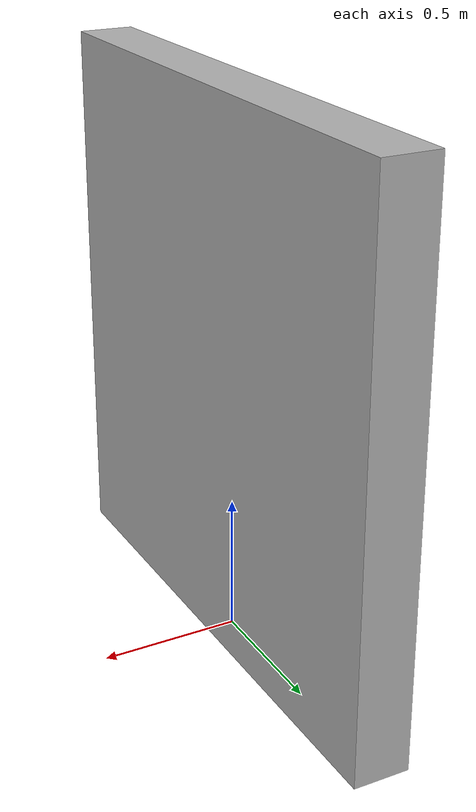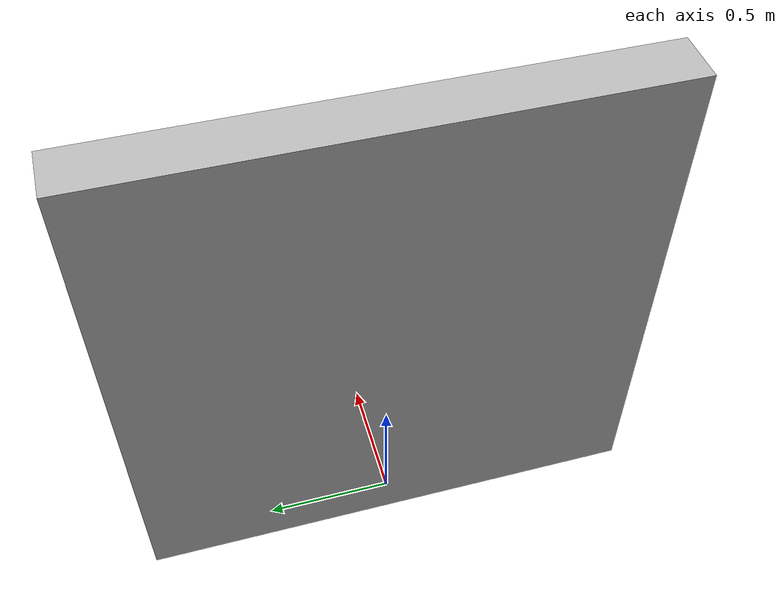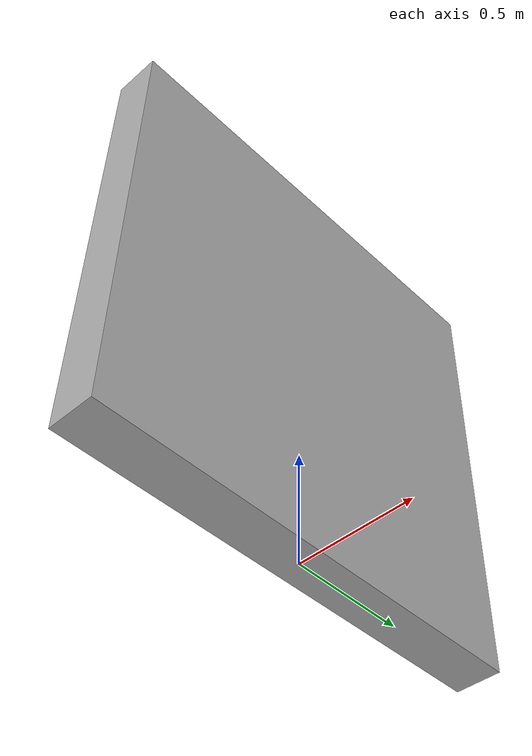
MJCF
<mujoco model="wall_1">
  <compiler angle="radian" autolimits="true" />

  <asset>
    <texture type="2d" name="light_wood_wall" file="light_wood_v2.png" />
        <material name="wood_mat_wall" texture="light_wood_wall" specular="0.5" shininess="0.5" rgba="0.5 0.5 0.5 1" />
  </asset>

  <worldbody>
    <body name="body_wall_1" pos="0 0 0">
      <geom type="box" size="0.1 1.0 1.0" pos="0.0 0.0 1.0" rgba="0.7 0.7 0.7 1.0" />
    </body>
  </worldbody>

</mujoco>
